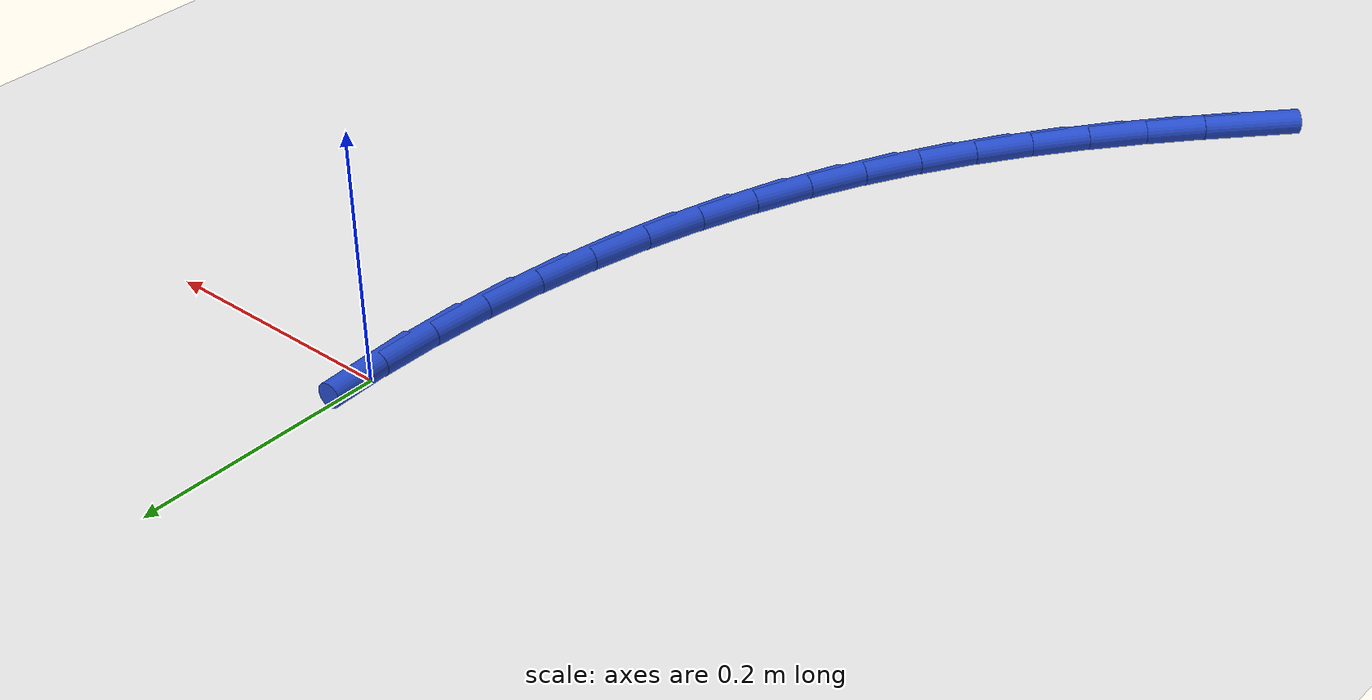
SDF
<sdf version="1.6">
 <world name="default">
  <model name="ground_plane">
   <static>1</static>
   <link name="link">
    <collision name="collision">
     <geometry><plane><normal>0 0 1</normal><size>100 100</size></plane></geometry>
     <surface><friction><ode><mu>100</mu><mu2>50</mu2></ode></friction></surface>
    </collision>
    <visual name="visual">
     <cast_shadows>0</cast_shadows>
     <geometry><plane><normal>0 0 1</normal><size>100 100</size></plane></geometry>
     <material>
      <script><uri>file://media/materials/scripts/gazebo.material</uri><name>Gazebo/WhiteGlow</name></script>
     </material>
    </visual>
   </link>
  </model>
  <model name="line">
   <link name="link_124">
    <pose>-0.2931993833181845 -0.6973025898950663 0.01 0 1.57 0.8277119165674608</pose>
    <collision name="collision">
     <geometry><cylinder><radius>0.01</radius><length>0.08</length></cylinder></geometry>
    </collision>
    <visual name="visual">
     <material>
      <script><name>Gazebo/Blue</name><uri>file://media/materials/scripts/gazebo.material</uri></script>
     </material>
     <geometry><cylinder><radius>0.01</radius><length>0.08</length></cylinder></geometry>
    </visual>
   </link>
   <link name="link_125">
    <pose>-0.26005530012772193 -0.6612278491982421 0.01 0 1.57 0.8563041909436947</pose>
    <collision name="collision">
     <geometry><cylinder><radius>0.01</radius><length>0.08</length></cylinder></geometry>
    </collision>
    <visual name="visual">
     <material>
      <script><name>Gazebo/Blue</name><uri>file://media/materials/scripts/gazebo.material</uri></script>
     </material>
     <geometry><cylinder><radius>0.01</radius><length>0.08</length></cylinder></geometry>
    </visual>
   </link>
   <link name="link_126">
    <pose>-0.22821800889542163 -0.6245222957322951 0.01 0 1.57 0.8904248357819515</pose>
    <collision name="collision">
     <geometry><cylinder><radius>0.01</radius><length>0.08</length></cylinder></geometry>
    </collision>
    <visual name="visual">
     <material>
      <script><name>Gazebo/Blue</name><uri>file://media/materials/scripts/gazebo.material</uri></script>
     </material>
     <geometry><cylinder><radius>0.01</radius><length>0.08</length></cylinder></geometry>
    </visual>
   </link>
   <link name="link_127">
    <pose>-0.1978648656023997 -0.5870157540818627 0.01 0 1.57 0.9300727019835326</pose>
    <collision name="collision">
     <geometry><cylinder><radius>0.01</radius><length>0.08</length></cylinder></geometry>
    </collision>
    <visual name="visual">
     <material>
      <script><name>Gazebo/Blue</name><uri>file://media/materials/scripts/gazebo.material</uri></script>
     </material>
     <geometry><cylinder><radius>0.01</radius><length>0.08</length></cylinder></geometry>
    </visual>
   </link>
   <link name="link_128">
    <pose>-0.16917322622977052 -0.5485380488315806 0.01 0 1.57 0.975143030565546</pose>
    <collision name="collision">
     <geometry><cylinder><radius>0.01</radius><length>0.08</length></cylinder></geometry>
    </collision>
    <visual name="visual">
     <material>
      <script><name>Gazebo/Blue</name><uri>file://media/materials/scripts/gazebo.material</uri></script>
     </material>
     <geometry><cylinder><radius>0.01</radius><length>0.08</length></cylinder></geometry>
    </visual>
   </link>
   <link name="link_129">
    <pose>-0.14232044675864916 -0.5089190045660854 0.01 0 1.57 1.0253935984132356</pose>
    <collision name="collision">
     <geometry><cylinder><radius>0.01</radius><length>0.08</length></cylinder></geometry>
    </collision>
    <visual name="visual">
     <material>
      <script><name>Gazebo/Blue</name><uri>file://media/materials/scripts/gazebo.material</uri></script>
     </material>
     <geometry><cylinder><radius>0.01</radius><length>0.08</length></cylinder></geometry>
    </visual>
   </link>
   <link name="link_130">
    <pose>-0.11748388317015057 -0.4679884458700133 0.01 0 1.57 1.0804067441409055</pose>
    <collision name="collision">
     <geometry><cylinder><radius>0.01</radius><length>0.08</length></cylinder></geometry>
    </collision>
    <visual name="visual">
     <material>
      <script><name>Gazebo/Blue</name><uri>file://media/materials/scripts/gazebo.material</uri></script>
     </material>
     <geometry><cylinder><radius>0.01</radius><length>0.08</length></cylinder></geometry>
    </visual>
   </link>
   <link name="link_131">
    <pose>-0.09484071545507244 -0.4255766679907247 0.01 0 1.57 1.1378766607939899</pose>
    <collision name="collision">
     <geometry><cylinder><radius>0.01</radius><length>0.08</length></cylinder></geometry>
    </collision>
    <visual name="visual">
     <material>
      <script><name>Gazebo/Blue</name><uri>file://media/materials/scripts/gazebo.material</uri></script>
     </material>
     <geometry><cylinder><radius>0.01</radius><length>0.08</length></cylinder></geometry>
    </visual>
   </link>
   <link name="link_132">
    <pose>-0.07452724399089868 -0.3816232932709509 0.01 0 1.57 1.1937600956516035</pose>
    <collision name="collision">
     <geometry><cylinder><radius>0.01</radius><length>0.08</length></cylinder></geometry>
    </collision>
    <visual name="visual">
     <material>
      <script><name>Gazebo/Blue</name><uri>file://media/materials/scripts/gazebo.material</uri></script>
     </material>
     <geometry><cylinder><radius>0.01</radius><length>0.08</length></cylinder></geometry>
    </visual>
   </link>
   <link name="link_133">
    <pose>-0.05658674267161009 -0.33631673102592713 0.01 0 1.57 1.2479189738776737</pose>
    <collision name="collision">
     <geometry><cylinder><radius>0.01</radius><length>0.08</length></cylinder></geometry>
    </collision>
    <visual name="visual">
     <material>
      <script><name>Gazebo/Blue</name><uri>file://media/materials/scripts/gazebo.material</uri></script>
     </material>
     <geometry><cylinder><radius>0.01</radius><length>0.08</length></cylinder></geometry>
    </visual>
   </link>
   <link name="link_134">
    <pose>-0.04104961152704746 -0.2898798200103703 0.01 0 1.57 1.3007883373066151</pose>
    <collision name="collision">
     <geometry><cylinder><radius>0.01</radius><length>0.08</length></cylinder></geometry>
    </collision>
    <visual name="visual">
     <material>
      <script><name>Gazebo/Blue</name><uri>file://media/materials/scripts/gazebo.material</uri></script>
     </material>
     <geometry><cylinder><radius>0.01</radius><length>0.08</length></cylinder></geometry>
    </visual>
   </link>
   <link name="link_135">
    <pose>-0.027946250587051375 -0.2425353989789972 0.01 0 1.57 1.3528009004465567</pose>
    <collision name="collision">
     <geometry><cylinder><radius>0.01</radius><length>0.08</length></cylinder></geometry>
    </collision>
    <visual name="visual">
     <material>
      <script><name>Gazebo/Blue</name><uri>file://media/materials/scripts/gazebo.material</uri></script>
     </material>
     <geometry><cylinder><radius>0.01</radius><length>0.08</length></cylinder></geometry>
    </visual>
   </link>
   <link name="link_136">
    <pose>-0.017307059881463017 -0.1945063066865263 0.01 0 1.57 1.404387836492369</pose>
    <collision name="collision">
     <geometry><cylinder><radius>0.01</radius><length>0.08</length></cylinder></geometry>
    </collision>
    <visual name="visual">
     <material>
      <script><name>Gazebo/Blue</name><uri>file://media/materials/scripts/gazebo.material</uri></script>
     </material>
     <geometry><cylinder><radius>0.01</radius><length>0.08</length></cylinder></geometry>
    </visual>
   </link>
   <link name="link_137">
    <pose>-0.009162439440122919 -0.14601538188767393 0.01 0 1.57 1.4559811402599854</pose>
    <collision name="collision">
     <geometry><cylinder><radius>0.01</radius><length>0.08</length></cylinder></geometry>
    </collision>
    <visual name="visual">
     <material>
      <script><name>Gazebo/Blue</name><uri>file://media/materials/scripts/gazebo.material</uri></script>
     </material>
     <geometry><cylinder><radius>0.01</radius><length>0.08</length></cylinder></geometry>
    </visual>
   </link>
   <link name="link_138">
    <pose>-0.0035427892928718632 -0.09728546333715747 0.01 0 1.57 1.5080168487426322</pose>
    <collision name="collision">
     <geometry><cylinder><radius>0.01</radius><length>0.08</length></cylinder></geometry>
    </collision>
    <visual name="visual">
     <material>
      <script><name>Gazebo/Blue</name><uri>file://media/materials/scripts/gazebo.material</uri></script>
     </material>
     <geometry><cylinder><radius>0.01</radius><length>0.08</length></cylinder></geometry>
    </visual>
   </link>
   <link name="link_139">
    <pose>-0.00047850946955062083 -0.048539389789694 0.01 0 1.57 1.560938477912665</pose>
    <collision name="collision">
     <geometry><cylinder><radius>0.01</radius><length>0.08</length></cylinder></geometry>
    </collision>
    <visual name="visual">
     <material>
      <script><name>Gazebo/Blue</name><uri>file://media/materials/scripts/gazebo.material</uri></script>
     </material>
     <geometry><cylinder><radius>0.01</radius><length>0.08</length></cylinder></geometry>
    </visual>
   </link>
   <link name="link_140">
    <pose>2.2551405187698492e-17 -1.3877787807814457e-17 0.01 0 1.57 -1.5263926333987776</pose>
    <collision name="collision">
     <geometry><cylinder><radius>0.01</radius><length>0.08</length></cylinder></geometry>
    </collision>
    <visual name="visual">
     <material>
      <script><name>Gazebo/Blue</name><uri>file://media/materials/scripts/gazebo.material</uri></script>
     </material>
     <geometry><cylinder><radius>0.01</radius><length>0.08</length></cylinder></geometry>
    </visual>
   </link>
  </model>
 </world>
</sdf>
